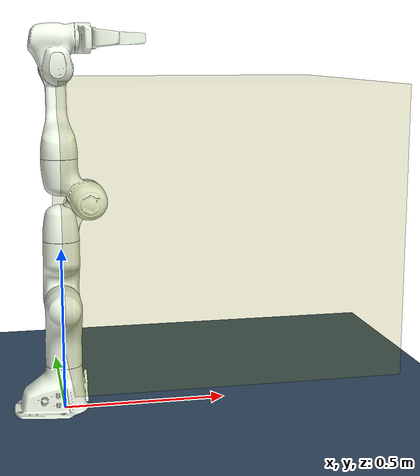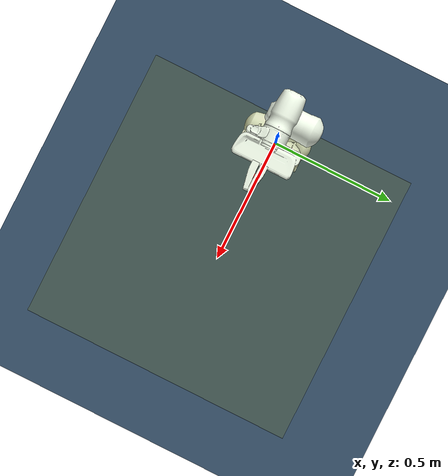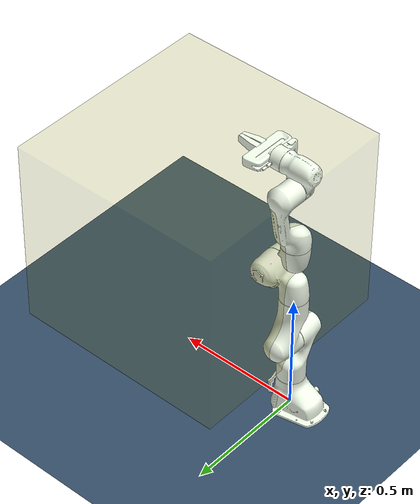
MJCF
<mujoco model="franka_panda v200">

    <compiler angle="radian"
              inertiafromgeom="true"/>
    <option timestep="2e-3"
            iterations="10"
            tolerance="1e-10"
            impratio="20"
            gravity="0 0 -0.91" />
    <size njmax="4000" nconmax="150" nstack="30000"/> <!-- nuser_actuator="5" -->

    <include file="/assets/assets.xml"/>
    <include file="/assets/sensors.xml"/>
    <include file='/assets/scene.xml'/>
    <compiler meshdir=""/>

    <worldbody>
        <include file="/assets/chain.xml"/>
        <include file="/assets/others.xml"/>
    </worldbody>

    <include file='/assets/actuator_position.xml'/>

</mujoco>

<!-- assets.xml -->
<mujocoinclude>

    <asset>
        <mesh name="link0_col" file="meshes/collision/link0.stl"/>
        <mesh name="link1_col" file="meshes/collision/link1.stl"/>
        <mesh name="link2_col" file="meshes/collision/link2.stl"/>
        <mesh name="link3_col" file="meshes/collision/link3.stl"/>
        <mesh name="link4_col" file="meshes/collision/link4.stl"/>
        <mesh name="link5_col" file="meshes/collision/link5.stl"/>
        <mesh name="link6_col" file="meshes/collision/link6.stl"/>
        <mesh name="link7_col" file="meshes/collision/link7.stl"/>
        <mesh name="hand_col" file="meshes/collision/hand.stl"/>
        <mesh name="finger_col" file="meshes/collision/finger.stl" scale='1.75 1.0 1.75'/>
        <mesh name="link0_viz" file="meshes/visual/link0.stl"/>
        <mesh name="link1_viz" file="meshes/visual/link1.stl"/>
        <mesh name="link2_viz" file="meshes/visual/link2.stl"/>
        <mesh name="link3_viz" file="meshes/visual/link3.stl"/>
        <mesh name="link4_viz" file="meshes/visual/link4.stl"/>
        <mesh name="link5_viz" file="meshes/visual/link5.stl"/>
        <mesh name="link6_viz" file="meshes/visual/link6.stl"/>
        <mesh name="link7_viz" file="meshes/visual/link7.stl"/>
        <mesh name="hand_viz" file="meshes/visual/hand.stl"/>
        <mesh name="finger_viz" file="meshes/collision/finger.stl" scale='1.75 1.0 1.75'/>
    </asset>

    <default>
        <default class="panda">
            <joint pos="0 0 0" axis="0 0 1" limited="true"/>
            <position forcelimited="true" ctrllimited="true" user="1002 40 2001 -0.005 0.005"/>
            <default class="panda_viz">
                <geom contype="0" conaffinity="0" group="0" type="mesh" rgba=".95 .99 .92 1" mass="0"/>
            </default>

            <default class="panda_col">
                <geom contype="1" conaffinity="1" group="3" type="mesh" rgba=".5 .6 .7 1"/>
            </default>
            <default class="panda_arm">
                <joint damping="100"/>
            </default>
             <default class="panda_forearm">
                <joint damping="10"/>
            </default>
             <default class="panda_finger">
                <joint damping="100" armature='5'/>
                <geom friction="1 0.5 0.0001" solref="0.01 1" solimp="0.8 0.9 0.001" margin="0.001" user="0" rgba="0.5 0.6 0.7 .4" contype="1" conaffinity="0" condim="6" group="3" />
                <position user="1002 40 2001 -0.0001 0.0001"/>
            </default>
        </default>

        <default class="panda_overlay">
            <joint limited="false" damping="1000" armature="1" frictionloss="10"/>
            <geom contype="0" conaffinity="0" group="2" type="mesh" rgba=".42 0.42 0.42 .5"/>
        </default>
    </default>

</mujocoinclude>

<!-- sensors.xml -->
<mujocoinclude>
    <sensor>
        <jointpos name="fr_arm_jp1" joint="panda_joint1"/>
        <jointpos name="fr_arm_jp2" joint="panda_joint2"/>
        <jointpos name="fr_arm_jp3" joint="panda_joint3"/>
        <jointpos name="fr_arm_jp4" joint="panda_joint4"/>
        <jointpos name="fr_arm_jp5" joint="panda_joint5"/>
        <jointpos name="fr_arm_jp6" joint="panda_joint6"/>
        <jointpos name="fr_arm_jp7" joint="panda_joint7"/>
        <jointpos name="fr_fin_jp1" joint="panda_finger_joint1"/>
        <jointpos name="fr_fin_jp2" joint="panda_finger_joint2"/>
        <jointvel name="fr_arm_jv1" joint="panda_joint1"/>
        <jointvel name="fr_arm_jv2" joint="panda_joint2"/>
        <jointvel name="fr_arm_jv3" joint="panda_joint3"/>
        <jointvel name="fr_arm_jv4" joint="panda_joint4"/>
        <jointvel name="fr_arm_jv5" joint="panda_joint5"/>
        <jointvel name="fr_arm_jv6" joint="panda_joint6"/>
        <jointvel name="fr_arm_jv7" joint="panda_joint7"/>
        <jointvel name="fr_fin_jv1" joint="panda_finger_joint1"/>
        <jointvel name="fr_fin_jv2" joint="panda_finger_joint2"/>
    </sensor>

</mujocoinclude>

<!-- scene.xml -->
<mujocoinclude>
    <asset>
        <texture name="texplane" type="2d" builtin="flat" rgb1=".2 .3 .4" rgb2=".1 0.15 0.2"
                width="512" height="512"/>
        <material name="MatGnd" reflectance="0" texture="texplane" texrepeat="1 1" texuniform="true"/>
    </asset>

    <worldbody>
        <light directional="false" diffuse=".8 .8 .8" specular="0.3 0.3 0.3" pos="1  1 3" dir="-1 -1 -3"/>
        <light directional="false" diffuse=".8 .8 .8" specular="0.3 0.3 0.3" pos="1 -1 3" dir="-1 1 -3"/>
        <light directional="false" diffuse=".8 .8 .8" specular="0.3 0.3 0.3" pos="-1 0 3" dir="1 0 -3" />
        <geom name="ground" pos="0 0 0" size="5 5 10" material="MatGnd" type="plane" contype="1" conaffinity="1"/>
    </worldbody>
</mujocoinclude>

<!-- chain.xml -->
<mujocoinclude>
<!-- Robot limits pulled from https://frankaemika.github.io/docs/control_parameters.html#constants -->

    <body name="panda_link0" childclass="panda" >
        <geom class="panda_viz" mesh="link0_viz"/>
        <geom class="panda_col" mesh="link0_col" mass="2.91242"/>
        <body name="panda_link1" pos="0 0 0.333">
            <joint name="panda_joint1" limited="true" range="-2.8973 2.8973" class="panda_arm"/>
            <geom class="panda_viz" mesh="link1_viz"/>
            <geom class="panda_col" mesh="link1_col" mass="2.7063"/>
            <body name="panda_link2" pos="0 0 0" quat="0.707107 -0.707107 0 0">
                <joint name="panda_joint2" limited="true" range="-1.7628 1.7628" class="panda_arm"/>
                <geom class="panda_viz" mesh="link2_viz"/>
                <geom class="panda_col" mesh="link2_col" mass="2.73046"/>
                <body name="panda_link3" pos="0 -0.316 0" quat="0.707107 0.707107 0 0">
                    <joint name="panda_joint3" limited="true" range="-2.8973 2.8973" class="panda_arm"/>
                    <geom class="panda_viz" mesh="link3_viz"/>
                    <geom class="panda_col" mesh="link3_col" mass="2.04104"/>
                    <body name="panda_link4" pos="0.0825 0 0" quat="0.707107 0.707107 0 0">
                        <joint name="panda_joint4" limited="true" range="-3.0718 -0.0698" class="panda_arm"/>
                        <geom class="panda_viz" mesh="link4_viz"/>
                        <geom class="panda_col" mesh="link4_col" mass="2.08129"/>
                        <body name="panda_link5" pos="-0.0825 0.384 0" quat="0.707107 -0.707107 0 0">
                            <joint name="panda_joint5" limited="true" range="-2.8973 2.8973" class="panda_forearm"/>
                            <geom class="panda_viz" mesh="link5_viz"/>
                            <geom class="panda_col" mesh="link5_col" mass="3.00049"/>
                            <body name="panda_link6" pos="0 0 0" euler='1.57 0 1.57'>
                                <joint name="panda_joint6" limited="true" range="-0.01745 3.7523" class="panda_forearm"/>
                                <geom class="panda_viz" mesh="link6_viz"/>
                                <geom class="panda_col" mesh="link6_col" mass="1.3235"/>
                                <body name="panda_link7" pos="0.088 0 0" euler='1.57 0 0.7854'>
                                    <joint name="panda_joint7" limited="true" range="-2.8973 2.8973" class="panda_forearm"/>
                                    <geom class="panda_viz" mesh="link7_viz"/>
                                    <geom class="panda_col" mesh="link7_col" mass="0.2"/>
                                    <geom pos="0 0 0.107" quat="0.92388 0 0 -0.382683" class="panda_viz" mesh="hand_viz"/>
                                    <geom pos="0 0 0.107" quat="0.92388 0 0 -0.382683" class="panda_col" mesh="hand_col" mass="0.81909"/>
                                    <site name='end_effector' pos='0 0 .210' size='0.01' euler='0 0 -0.785398' rgba="1 0 0 1"/>
                                    <body name="panda_leftfinger" pos="0 0 0.1654" quat="0.92388 0 0 -0.382683" childclass='panda_finger'>
                                        <inertial pos="-1.57863e-05 0.0118731 0.0434103" quat="0.705868 0.0310348 -0.0314925 0.706962" mass="0.0927059" diaginertia="6.57134e-05 6.09611e-05 1.09932e-05" />
                                        <joint name="panda_finger_joint1"  axis="0 1 0" type="slide" limited="true" range="0 0.04" class="panda_finger"/>
                                        <geom class="panda_viz" mesh="finger_viz"/>
                                        <geom size="0.0070" fromto=".009 .006 .0875   -.009 .009 .0875" type="capsule" />
                                        <geom size="0.0070" fromto=".009 .009 .0875   -.009 .006 .0875" type="capsule" />

                                        <geom size="0.0075" fromto=".009 .007 .0775   -.009 .010 .0775" type="capsule" />
                                        <geom size="0.0075" fromto=".009 .010 .0775   -.009 .007 .0775" type="capsule" />

                                        <geom size="0.0082" fromto=".009 .008 .0675   -.009 .011 .0675" type="capsule" />
                                        <geom size="0.0082" fromto=".009 .011 .0675   -.009 .008 .0675" type="capsule" />

                                        <geom size="0.0090" fromto=".009 .009 .0575   -.009 .012 .0575" type="capsule" />
                                        <geom size="0.0090" fromto=".009 .012 .0575   -.009 .009 .0575" type="capsule" />

                                        <geom size="0.0100" fromto=".009 .0105 .0475   -.009 .0135 .0475" type="capsule" />
                                        <geom size="0.0100" fromto=".009 .0135 .0475   -.009 .0105 .0475" type="capsule" />

                                        <geom size="0.0110" fromto=".009 .012 .035   -.009 .015 .035" type="capsule" />
                                        <geom size="0.0110" fromto=".009 .015 .035   -.009 .012 .035" type="capsule" />

                                        <geom size="0.0185 0.0120 0.0175" pos="0 0.014 0.015" type="box" euler='.03 0 0' />

                                    </body>
                                    <body name="panda_rightfinger" pos="0 0 0.1654" quat="0.92388 0 0 -0.382683"  childclass='panda_finger'>
                                        <inertial pos="1.57863e-05 -0.0118731 0.0434103" quat="0.705868 -0.0310348 0.0314925 0.706962" mass="0.0927059" diaginertia="6.57134e-05 6.09611e-05 1.09932e-05" />
                                        <joint name="panda_finger_joint2" axis="0 -1 0" type="slide" limited="true" range="0 0.04" class="panda_finger"/>
                                        <geom quat="0 0 0 1" class="panda_viz" mesh="finger_viz"/>
                                        <geom size="0.0070" fromto=".009 -.006 .0875   -.009 -.009 .0875" type="capsule" />
                                        <geom size="0.0070" fromto=".009 -.009 .0875   -.009 -.006 .0875" type="capsule" />

                                        <geom size="0.0075" fromto=".009 -.007 .0775   -.009 -.010 .0775" type="capsule" />
                                        <geom size="0.0075" fromto=".009 -.010 .0775   -.009 -.007 .0775" type="capsule" />

                                        <geom size="0.0082" fromto=".009 -.008 .0675   -.009 -.011 .0675" type="capsule" />
                                        <geom size="0.0082" fromto=".009 -.011 .0675   -.009 -.008 .0675" type="capsule" />

                                        <geom size="0.0090" fromto=".009 -.009 .0575   -.009 -.012 .0575" type="capsule" />
                                        <geom size="0.0090" fromto=".009 -.012 .0575   -.009 -.009 .0575" type="capsule" />

                                        <geom size="0.0100" fromto=".009 -.0105 .0475   -.009 -.0135 .0475" type="capsule" />
                                        <geom size="0.0100" fromto=".009 -.0135 .0475   -.009 -.0105 .0475" type="capsule" />

                                        <geom size="0.0110" fromto=".009 -.012 .035   -.009 -.015 .035" type="capsule" />
                                        <geom size="0.0110" fromto=".009 -.015 .035   -.009 -.012 .035" type="capsule" />

                                        <geom size="0.0185 0.0120 0.0175" pos="0 -.014 0.015" type="box" euler='-.03 0 0' />
                                    </body>
                                </body>
                            </body>
                        </body>
                    </body>
                </body>
            </body>
        </body>
    </body>
</mujocoinclude>

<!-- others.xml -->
<mujocoinclude>
    <site name='target_point' pos='0.5 0 0.5' size='0.05' euler='0 0 0' rgba="1 0 0 0.5"/>

    <site name='workspace' type="box" pos='0.45 0 0.6' size='0.45 0.45 0.4' euler='0 0 0' rgba="0.5 0.5 0 0.1"/>

</mujocoinclude>

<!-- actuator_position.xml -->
<mujocoinclude>

    <actuator>
        <position name="panda_joint1" joint="panda_joint1" class="panda" kp="3000" forcerange="-87 87" ctrllimited="true" ctrlrange="-2.8973 2.8973"/> <!-- velocity="2.1750" -->
        <position name="panda_joint2" joint="panda_joint2" class="panda" kp="3000" forcerange="-87 87" ctrllimited="true" ctrlrange="-1.7628 1.7628"/> <!-- velocity="2.1750" -->
        <position name="panda_joint3" joint="panda_joint3" class="panda" kp="3000" forcerange="-87 87" ctrllimited="true" ctrlrange="-2.8973 2.8973"/> <!-- velocity="2.1750" -->
        <position name="panda_joint4" joint="panda_joint4" class="panda" kp="3000" forcerange="-87 87" ctrllimited="true" ctrlrange="-3.0717 -0.0698"/> <!-- velocity="2.1750" -->
        <position name="panda_joint5" joint="panda_joint5" class="panda" kp="3000" forcerange="-12 12" ctrllimited="true" ctrlrange="-2.8973 2.8973"/> <!-- velocity="2.6100" -->
        <position name="panda_joint6" joint="panda_joint6" class="panda" kp="3000" forcerange="-12 12" ctrllimited="true" ctrlrange="-0.01745 3.7523"/> <!-- velocity="2.6100" -->
        <position name="panda_joint7" joint="panda_joint7" class="panda" kp="3000" forcerange="-12 12" ctrllimited="true" ctrlrange="-2.8973 2.8973"/> <!-- velocity="2.9671" -->
        <position name="r_gripper_finger_joint" joint="panda_finger_joint1" class="panda_finger" kp="3000" forcerange="-70 70" ctrllimited="true" ctrlrange="0 0.04"/> <!-- velocity=".2" -->
        <position name="l_gripper_finger_joint" joint="panda_finger_joint2" class="panda_finger" kp="3000" forcerange="-70 70" ctrllimited="true" ctrlrange="0 0.04"/> <!-- velocity=".2" -->
    </actuator>
</mujocoinclude>
